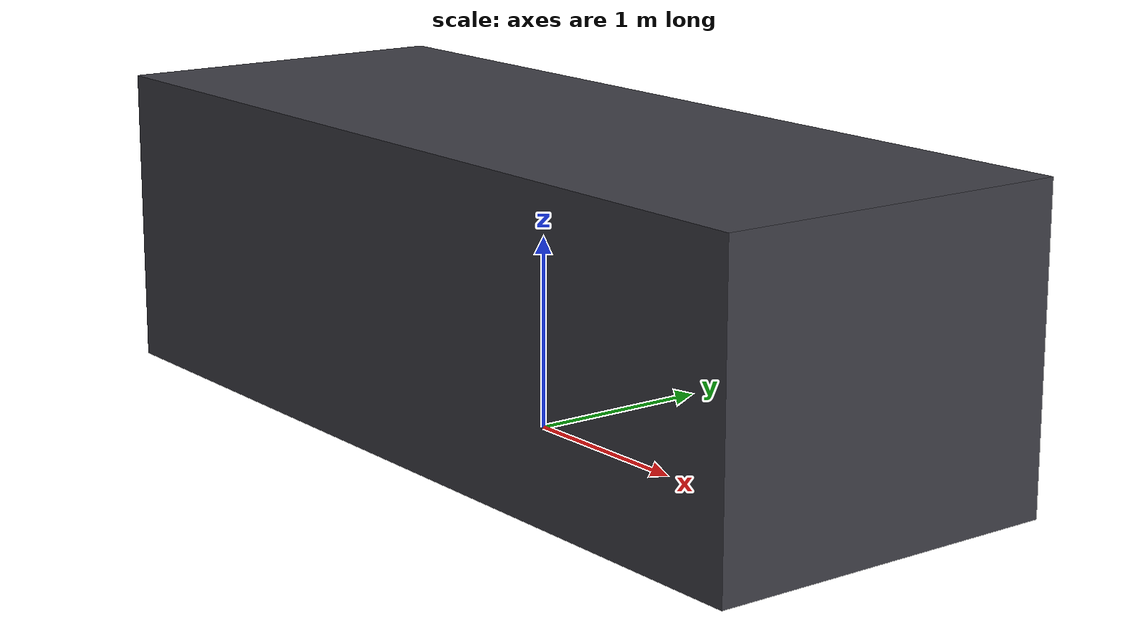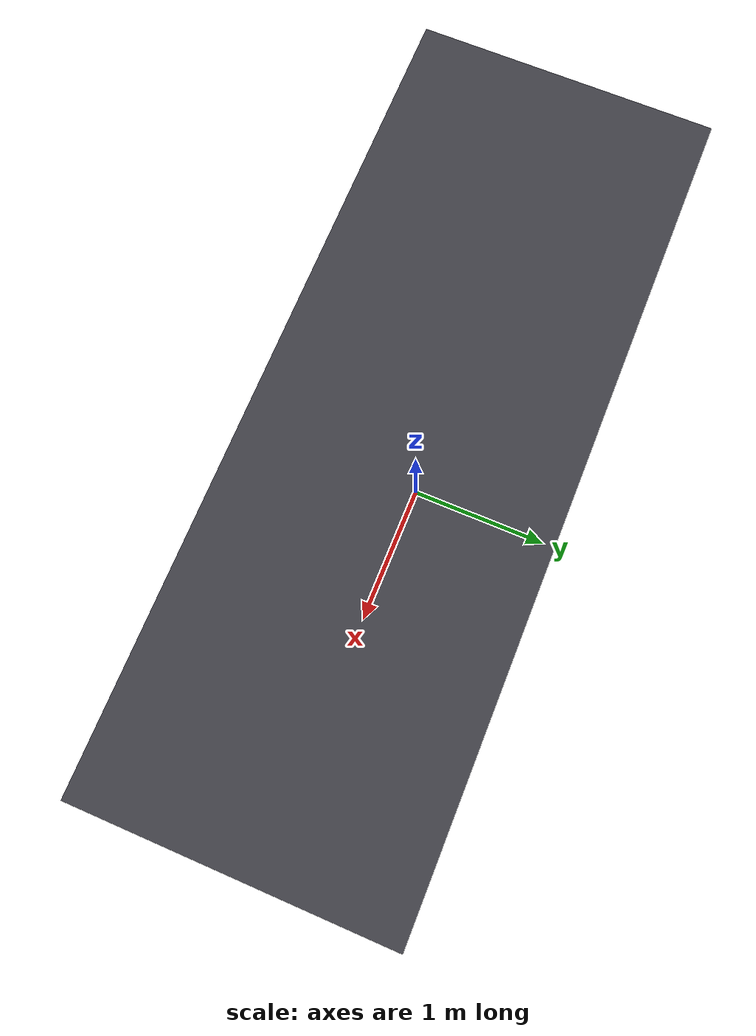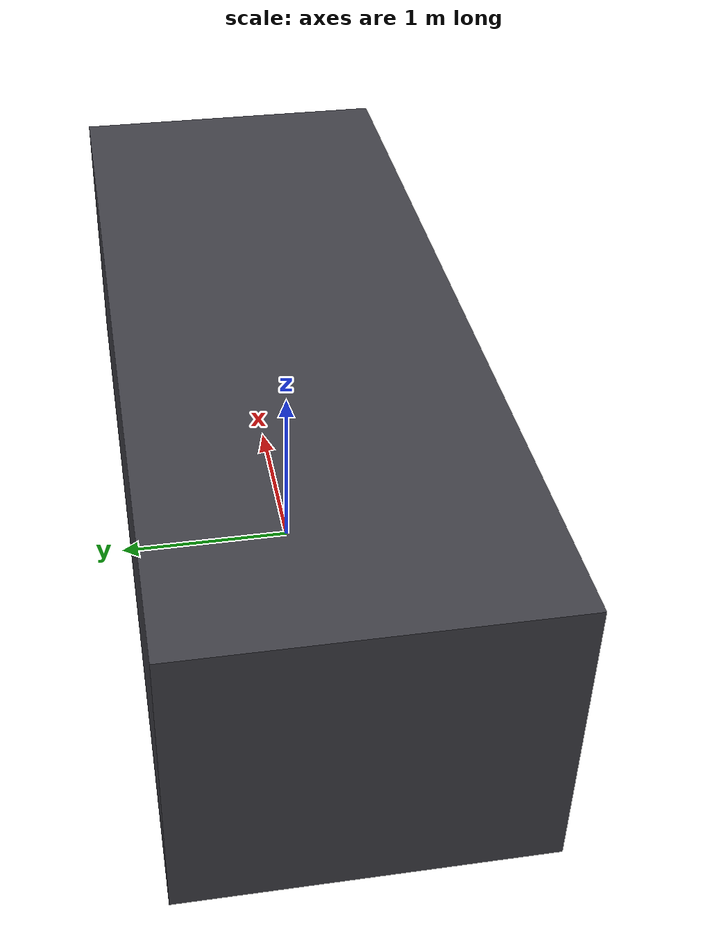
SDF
<?xml version="1.0"?>
<sdf version="1.6">
  <model name="pickup">
    <static>true</static>
    <link name="link">
      <collision name="collision">
        <geometry>
          <box>
            <size>5.0 1.9 1.6</size>
          </box>
        </geometry>
      </collision>
      <visual name="visual">
        <pose>0 0 0.8 0 0 0</pose>
        <geometry>
          <box>
            <size>5.0 1.9 1.6</size>
          </box>
        </geometry>
        <material>
          <ambient>0.25 0.25 0.28 1</ambient>
          <diffuse>0.25 0.25 0.28 1</diffuse>
          <specular>0.1 0.1 0.1 1</specular>
        </material>
      </visual>
    </link>
  </model>
</sdf>
